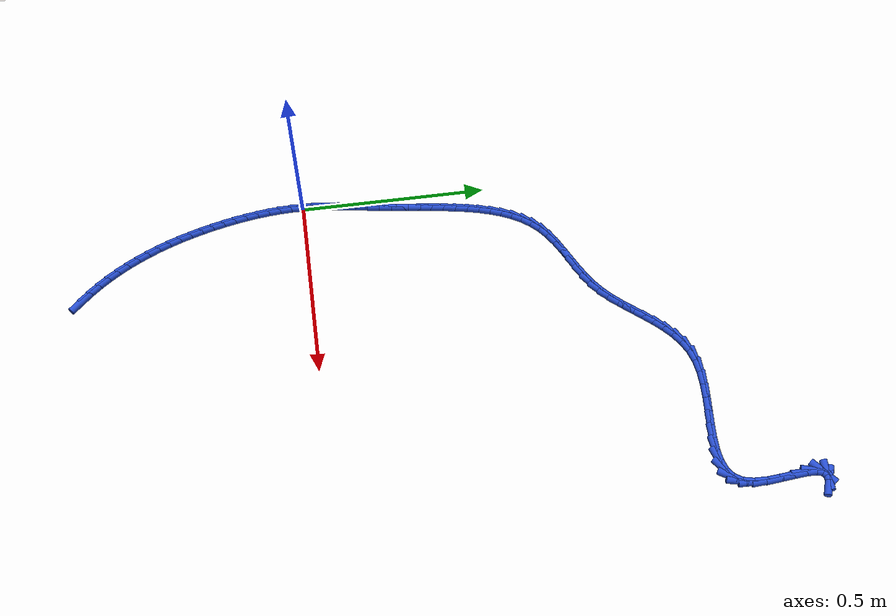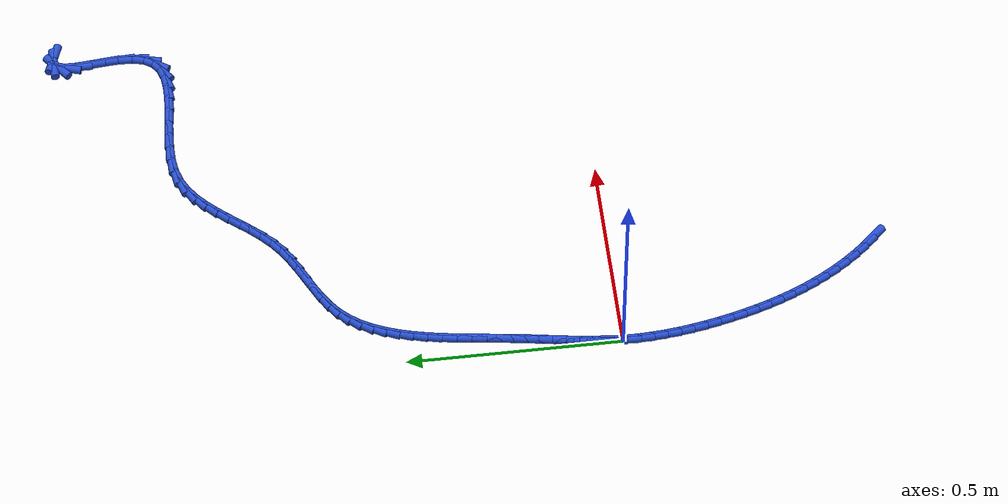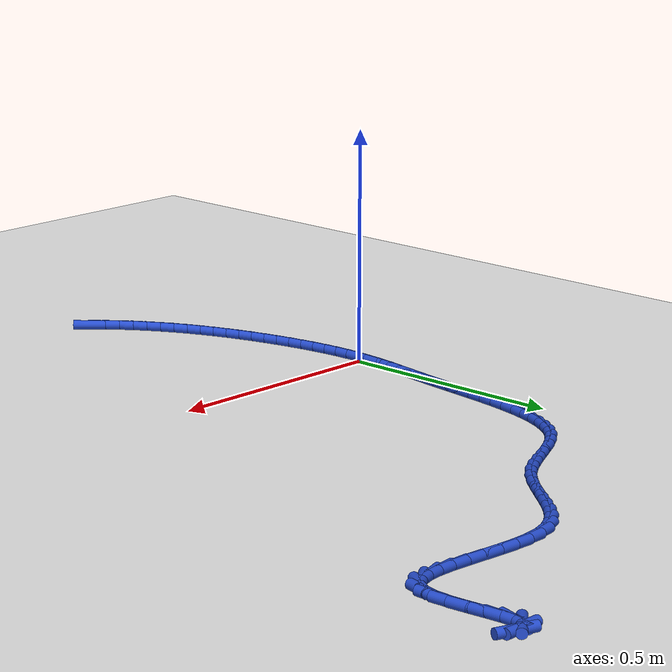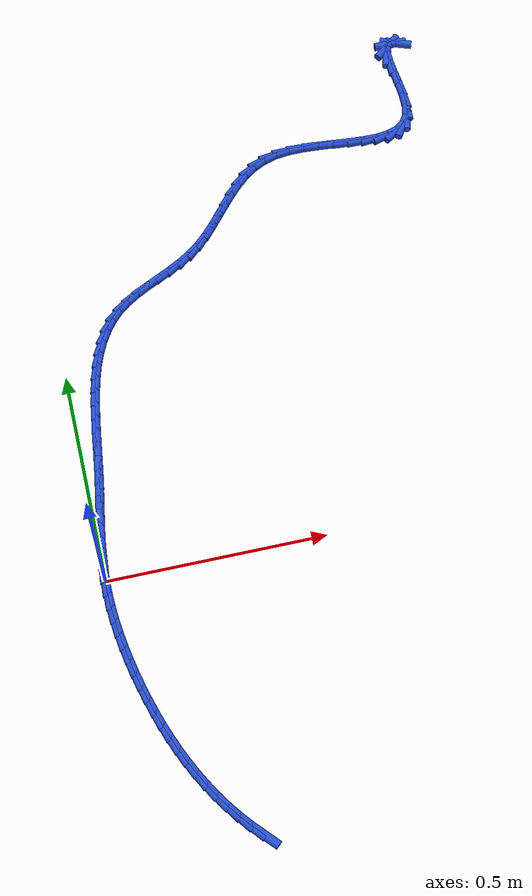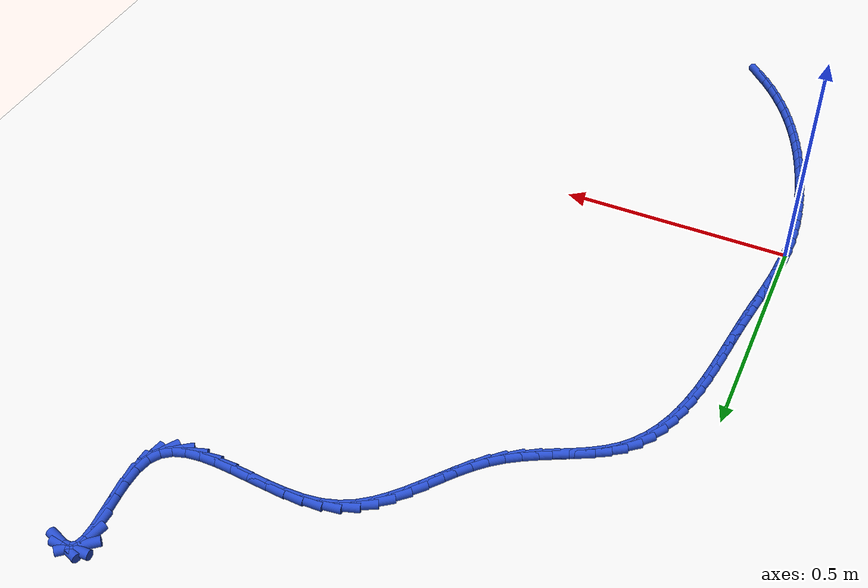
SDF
<sdf version="1.6">
 <world name="default">
  <model name="ground_plane">
   <static>1</static>
   <link name="link">
    <collision name="collision">
     <geometry><plane><normal>0 0 1</normal><size>100 100</size></plane></geometry>
     <surface><friction><ode><mu>100</mu><mu2>50</mu2></ode></friction></surface>
    </collision>
    <visual name="visual">
     <cast_shadows>0</cast_shadows>
     <geometry><plane><normal>0 0 1</normal><size>100 100</size></plane></geometry>
     <material>
      <script><uri>file://media/materials/scripts/gazebo.material</uri><name>Gazebo/WhiteGlow</name></script>
     </material>
    </visual>
   </link>
  </model>
  <model name="line">
   <link name="link_0">
    <pose>-8.673617379884035e-19 2.7755575615628914e-17 0.01 0 1.57 1.5227078430501169</pose>
    <collision name="collision">
     <geometry><cylinder><radius>0.01</radius><length>0.08</length></cylinder></geometry>
    </collision>
    <visual name="visual">
     <material>
      <script><name>Gazebo/Blue</name><uri>file://media/materials/scripts/gazebo.material</uri></script>
     </material>
     <geometry><cylinder><radius>0.01</radius><length>0.08</length></cylinder></geometry>
    </visual>
   </link>
   <link name="link_1">
    <pose>0.0014766979700488309 0.030684259317045944 0.01 0 1.57 1.484574046072524</pose>
    <collision name="collision">
     <geometry><cylinder><radius>0.01</radius><length>0.08</length></cylinder></geometry>
    </collision>
    <visual name="visual">
     <material>
      <script><name>Gazebo/Blue</name><uri>file://media/materials/scripts/gazebo.material</uri></script>
     </material>
     <geometry><cylinder><radius>0.01</radius><length>0.08</length></cylinder></geometry>
    </visual>
   </link>
   <link name="link_2">
    <pose>0.004117510956563853 0.06123628758839806 0.01 0 1.57 1.4543443842008996</pose>
    <collision name="collision">
     <geometry><cylinder><radius>0.01</radius><length>0.08</length></cylinder></geometry>
    </collision>
    <visual name="visual">
     <material>
      <script><name>Gazebo/Blue</name><uri>file://media/materials/scripts/gazebo.material</uri></script>
     </material>
     <geometry><cylinder><radius>0.01</radius><length>0.08</length></cylinder></geometry>
    </visual>
   </link>
   <link name="link_3">
    <pose>0.007690861254964938 0.09178264685997742 0.01 0 1.57 1.4323114525035265</pose>
    <collision name="collision">
     <geometry><cylinder><radius>0.01</radius><length>0.08</length></cylinder></geometry>
    </collision>
    <visual name="visual">
     <material>
      <script><name>Gazebo/Blue</name><uri>file://media/materials/scripts/gazebo.material</uri></script>
     </material>
     <geometry><cylinder><radius>0.01</radius><length>0.08</length></cylinder></geometry>
    </visual>
   </link>
   <link name="link_4">
    <pose>0.011965171160671998 0.12244989917770505 0.01 0 1.57 1.418539389519517</pose>
    <collision name="collision">
     <geometry><cylinder><radius>0.01</radius><length>0.08</length></cylinder></geometry>
    </collision>
    <visual name="visual">
     <material>
      <script><name>Gazebo/Blue</name><uri>file://media/materials/scripts/gazebo.material</uri></script>
     </material>
     <geometry><cylinder><radius>0.01</radius><length>0.08</length></cylinder></geometry>
    </visual>
   </link>
   <link name="link_5">
    <pose>0.016708862969104895 0.1533646065875019 0.01 0 1.57 1.4129108738066924</pose>
    <collision name="collision">
     <geometry><cylinder><radius>0.01</radius><length>0.08</length></cylinder></geometry>
    </collision>
    <visual name="visual">
     <material>
      <script><name>Gazebo/Blue</name><uri>file://media/materials/scripts/gazebo.material</uri></script>
     </material>
     <geometry><cylinder><radius>0.01</radius><length>0.08</length></cylinder></geometry>
    </visual>
   </link>
   <link name="link_6">
    <pose>0.021690358975683527 0.1846533311352891 0.01 0 1.57 1.4151657299652882</pose>
    <collision name="collision">
     <geometry><cylinder><radius>0.01</radius><length>0.08</length></cylinder></geometry>
    </collision>
    <visual name="visual">
     <material>
      <script><name>Gazebo/Blue</name><uri>file://media/materials/scripts/gazebo.material</uri></script>
     </material>
     <geometry><cylinder><radius>0.01</radius><length>0.08</length></cylinder></geometry>
    </visual>
   </link>
   <link name="link_7">
    <pose>0.026678081475827765 0.21644263486698756 0.01 0 1.57 1.424927590133822</pose>
    <collision name="collision">
     <geometry><cylinder><radius>0.01</radius><length>0.08</length></cylinder></geometry>
    </collision>
    <visual name="visual">
     <material>
      <script><name>Gazebo/Blue</name><uri>file://media/materials/scripts/gazebo.material</uri></script>
     </material>
     <geometry><cylinder><radius>0.01</radius><length>0.08</length></cylinder></geometry>
    </visual>
   </link>
   <link name="link_8">
    <pose>0.0314404527764978 0.24885907981941502 0.01 0 1.57 1.4389313910487087</pose>
    <collision name="collision">
     <geometry><cylinder><radius>0.01</radius><length>0.08</length></cylinder></geometry>
    </collision>
    <visual name="visual">
     <material>
      <script><name>Gazebo/Blue</name><uri>file://media/materials/scripts/gazebo.material</uri></script>
     </material>
     <geometry><cylinder><radius>0.01</radius><length>0.08</length></cylinder></geometry>
    </visual>
   </link>
   <link name="link_9">
    <pose>0.03583105232287879 0.2819620539237671 0.01 0 1.57 1.4461551996176942</pose>
    <collision name="collision">
     <geometry><cylinder><radius>0.01</radius><length>0.08</length></cylinder></geometry>
    </collision>
    <visual name="visual">
     <material>
      <script><name>Gazebo/Blue</name><uri>file://media/materials/scripts/gazebo.material</uri></script>
     </material>
     <geometry><cylinder><radius>0.01</radius><length>0.08</length></cylinder></geometry>
    </visual>
   </link>
   <link name="link_10">
    <pose>0.04003885294282734 0.31554637832350824 0.01 0 1.57 1.4443409081162084</pose>
    <collision name="collision">
     <geometry><cylinder><radius>0.01</radius><length>0.08</length></cylinder></geometry>
    </collision>
    <visual name="visual">
     <material>
      <script><name>Gazebo/Blue</name><uri>file://media/materials/scripts/gazebo.material</uri></script>
     </material>
     <geometry><cylinder><radius>0.01</radius><length>0.08</length></cylinder></geometry>
    </visual>
   </link>
   <link name="link_11">
    <pose>0.04433538707058213 0.3493417490553315 0.01 0 1.57 1.4336270910488593</pose>
    <collision name="collision">
     <geometry><cylinder><radius>0.01</radius><length>0.08</length></cylinder></geometry>
    </collision>
    <visual name="visual">
     <material>
      <script><name>Gazebo/Blue</name><uri>file://media/materials/scripts/gazebo.material</uri></script>
     </material>
     <geometry><cylinder><radius>0.01</radius><length>0.08</length></cylinder></geometry>
    </visual>
   </link>
   <link name="link_12">
    <pose>0.04899218714038191 0.3830778621559303 0.01 0 1.57 1.4137891010803572</pose>
    <collision name="collision">
     <geometry><cylinder><radius>0.01</radius><length>0.08</length></cylinder></geometry>
    </collision>
    <visual name="visual">
     <material>
      <script><name>Gazebo/Blue</name><uri>file://media/materials/scripts/gazebo.material</uri></script>
     </material>
     <geometry><cylinder><radius>0.01</radius><length>0.08</length></cylinder></geometry>
    </visual>
   </link>
   <link name="link_13">
    <pose>0.05428078558646535 0.41648441366199773 0.01 0 1.57 1.3842508964110392</pose>
    <collision name="collision">
     <geometry><cylinder><radius>0.01</radius><length>0.08</length></cylinder></geometry>
    </collision>
    <visual name="visual">
     <material>
      <script><name>Gazebo/Blue</name><uri>file://media/materials/scripts/gazebo.material</uri></script>
     </material>
     <geometry><cylinder><radius>0.01</radius><length>0.08</length></cylinder></geometry>
    </visual>
   </link>
   <link name="link_14">
    <pose>0.06047271484307115 0.4492910996102269 0.01 0 1.57 1.3440918055485607</pose>
    <collision name="collision">
     <geometry><cylinder><radius>0.01</radius><length>0.08</length></cylinder></geometry>
    </collision>
    <visual name="visual">
     <material>
      <script><name>Gazebo/Blue</name><uri>file://media/materials/scripts/gazebo.material</uri></script>
     </material>
     <geometry><cylinder><radius>0.01</radius><length>0.08</length></cylinder></geometry>
    </visual>
   </link>
   <link name="link_15">
    <pose>0.06783950734443803 0.48122761603731096 0.01 0 1.57 1.292066856727231</pose>
    <collision name="collision">
     <geometry><cylinder><radius>0.01</radius><length>0.08</length></cylinder></geometry>
    </collision>
    <visual name="visual">
     <material>
      <script><name>Gazebo/Blue</name><uri>file://media/materials/scripts/gazebo.material</uri></script>
     </material>
     <geometry><cylinder><radius>0.01</radius><length>0.08</length></cylinder></geometry>
    </visual>
   </link>
   <link name="link_16">
    <pose>0.07665269552480472 0.5120236589799433 0.01 0 1.57 1.2266748727406762</pose>
    <collision name="collision">
     <geometry><cylinder><radius>0.01</radius><length>0.08</length></cylinder></geometry>
    </collision>
    <visual name="visual">
     <material>
      <script><name>Gazebo/Blue</name><uri>file://media/materials/scripts/gazebo.material</uri></script>
     </material>
     <geometry><cylinder><radius>0.01</radius><length>0.08</length></cylinder></geometry>
    </visual>
   </link>
   <link name="link_17">
    <pose>0.0871838118184099 0.5414089244748169 0.01 0 1.57 1.1463318288702347</pose>
    <collision name="collision">
     <geometry><cylinder><radius>0.01</radius><length>0.08</length></cylinder></geometry>
    </collision>
    <visual name="visual">
     <material>
      <script><name>Gazebo/Blue</name><uri>file://media/materials/scripts/gazebo.material</uri></script>
     </material>
     <geometry><cylinder><radius>0.01</radius><length>0.08</length></cylinder></geometry>
    </visual>
   </link>
   <link name="link_18">
    <pose>0.09970438865949227 0.569113108558625 0.01 0 1.57 1.049729572246691</pose>
    <collision name="collision">
     <geometry><cylinder><radius>0.01</radius><length>0.08</length></cylinder></geometry>
    </collision>
    <visual name="visual">
     <material>
      <script><name>Gazebo/Blue</name><uri>file://media/materials/scripts/gazebo.material</uri></script>
     </material>
     <geometry><cylinder><radius>0.01</radius><length>0.08</length></cylinder></geometry>
    </visual>
   </link>
   <link name="link_19">
    <pose>0.11448595848229048 0.5948659072680608 0.01 0 1.57 0.9364479517494522</pose>
    <collision name="collision">
     <geometry><cylinder><radius>0.01</radius><length>0.08</length></cylinder></geometry>
    </collision>
    <visual name="visual">
     <material>
      <script><name>Gazebo/Blue</name><uri>file://media/materials/scripts/gazebo.material</uri></script>
     </material>
     <geometry><cylinder><radius>0.01</radius><length>0.08</length></cylinder></geometry>
    </visual>
   </link>
   <link name="link_20">
    <pose>0.1318000537210434 0.6183970166398175 0.01 0 1.57 0.8077711082801686</pose>
    <collision name="collision">
     <geometry><cylinder><radius>0.01</radius><length>0.08</length></cylinder></geometry>
    </collision>
    <visual name="visual">
     <material>
      <script><name>Gazebo/Blue</name><uri>file://media/materials/scripts/gazebo.material</uri></script>
     </material>
     <geometry><cylinder><radius>0.01</radius><length>0.08</length></cylinder></geometry>
    </visual>
   </link>
   <link name="link_21">
    <pose>0.15191820680998963 0.6394361327105883 0.01 0 1.57 0.6718495499952478</pose>
    <collision name="collision">
     <geometry><cylinder><radius>0.01</radius><length>0.08</length></cylinder></geometry>
    </collision>
    <visual name="visual">
     <material>
      <script><name>Gazebo/Blue</name><uri>file://media/materials/scripts/gazebo.material</uri></script>
     </material>
     <geometry><cylinder><radius>0.01</radius><length>0.08</length></cylinder></geometry>
    </visual>
   </link>
   <link name="link_22">
    <pose>0.1750202774864406 0.6578084944364359 0.01 0 1.57 0.5637679732753983</pose>
    <collision name="collision">
     <geometry><cylinder><radius>0.01</radius><length>0.08</length></cylinder></geometry>
    </collision>
    <visual name="visual">
     <material>
      <script><name>Gazebo/Blue</name><uri>file://media/materials/scripts/gazebo.material</uri></script>
     </material>
     <geometry><cylinder><radius>0.01</radius><length>0.08</length></cylinder></geometry>
    </visual>
   </link>
   <link name="link_23">
    <pose>0.2006442873387206 0.6740082759370251 0.01 0 1.57 0.4953028696086822</pose>
    <collision name="collision">
     <geometry><cylinder><radius>0.01</radius><length>0.08</length></cylinder></geometry>
    </collision>
    <visual name="visual">
     <material>
      <script><name>Gazebo/Blue</name><uri>file://media/materials/scripts/gazebo.material</uri></script>
     </material>
     <geometry><cylinder><radius>0.01</radius><length>0.08</length></cylinder></geometry>
    </visual>
   </link>
   <link name="link_24">
    <pose>0.22805397603519736 0.6888155128397677 0.01 0 1.57 0.4627128845364818</pose>
    <collision name="collision">
     <geometry><cylinder><radius>0.01</radius><length>0.08</length></cylinder></geometry>
    </collision>
    <visual name="visual">
     <material>
      <script><name>Gazebo/Blue</name><uri>file://media/materials/scripts/gazebo.material</uri></script>
     </material>
     <geometry><cylinder><radius>0.01</radius><length>0.08</length></cylinder></geometry>
    </visual>
   </link>
   <link name="link_25">
    <pose>0.25651205185897796 0.7030113157001865 0.01 0 1.57 0.46311617016512074</pose>
    <collision name="collision">
     <geometry><cylinder><radius>0.01</radius><length>0.08</length></cylinder></geometry>
    </collision>
    <visual name="visual">
     <material>
      <script><name>Gazebo/Blue</name><uri>file://media/materials/scripts/gazebo.material</uri></script>
     </material>
     <geometry><cylinder><radius>0.01</radius><length>0.08</length></cylinder></geometry>
    </visual>
   </link>
   <link name="link_26">
    <pose>0.2852812230931695 0.717376795073803 0.01 0 1.57 0.4954353351867064</pose>
    <collision name="collision">
     <geometry><cylinder><radius>0.01</radius><length>0.08</length></cylinder></geometry>
    </collision>
    <visual name="visual">
     <material>
      <script><name>Gazebo/Blue</name><uri>file://media/materials/scripts/gazebo.material</uri></script>
     </material>
     <geometry><cylinder><radius>0.01</radius><length>0.08</length></cylinder></geometry>
    </visual>
   </link>
   <link name="link_27">
    <pose>0.3136241980208788 0.7326930615161387 0.01 0 1.57 0.5602111921854945</pose>
    <collision name="collision">
     <geometry><cylinder><radius>0.01</radius><length>0.08</length></cylinder></geometry>
    </collision>
    <visual name="visual">
     <material>
      <script><name>Gazebo/Blue</name><uri>file://media/materials/scripts/gazebo.material</uri></script>
     </material>
     <geometry><cylinder><radius>0.01</radius><length>0.08</length></cylinder></geometry>
    </visual>
   </link>
   <link name="link_28">
    <pose>0.3408036849252134 0.7497412255827155 0.01 0 1.57 0.657716649335117</pose>
    <collision name="collision">
     <geometry><cylinder><radius>0.01</radius><length>0.08</length></cylinder></geometry>
    </collision>
    <visual name="visual">
     <material>
      <script><name>Gazebo/Blue</name><uri>file://media/materials/scripts/gazebo.material</uri></script>
     </material>
     <geometry><cylinder><radius>0.01</radius><length>0.08</length></cylinder></geometry>
    </visual>
   </link>
   <link name="link_29">
    <pose>0.36609989519673886 0.7692813509312098 0.01 0 1.57 0.7597730746519437</pose>
    <collision name="collision">
     <geometry><cylinder><radius>0.01</radius><length>0.08</length></cylinder></geometry>
    </collision>
    <visual name="visual">
     <material>
      <script><name>Gazebo/Blue</name><uri>file://media/materials/scripts/gazebo.material</uri></script>
     </material>
     <geometry><cylinder><radius>0.01</radius><length>0.08</length></cylinder></geometry>
    </visual>
   </link>
   <link name="link_30">
    <pose>0.38936596705056237 0.7913845759883146 0.01 0 1.57 0.8320810749532079</pose>
    <collision name="collision">
     <geometry><cylinder><radius>0.01</radius><length>0.08</length></cylinder></geometry>
    </collision>
    <visual name="visual">
     <material>
      <script><name>Gazebo/Blue</name><uri>file://media/materials/scripts/gazebo.material</uri></script>
     </material>
     <geometry><cylinder><radius>0.01</radius><length>0.08</length></cylinder></geometry>
    </visual>
   </link>
   <link name="link_31">
    <pose>0.4111424599092808 0.815295438306289 0.01 0 1.57 0.8735451435835182</pose>
    <collision name="collision">
     <geometry><cylinder><radius>0.01</radius><length>0.08</length></cylinder></geometry>
    </collision>
    <visual name="visual">
     <material>
      <script><name>Gazebo/Blue</name><uri>file://media/materials/scripts/gazebo.material</uri></script>
     </material>
     <geometry><cylinder><radius>0.01</radius><length>0.08</length></cylinder></geometry>
    </visual>
   </link>
   <link name="link_32">
    <pose>0.43201057371116647 0.8402096065845998 0.01 0 1.57 0.8852142958517611</pose>
    <collision name="collision">
     <geometry><cylinder><radius>0.01</radius><length>0.08</length></cylinder></geometry>
    </collision>
    <visual name="visual">
     <material>
      <script><name>Gazebo/Blue</name><uri>file://media/materials/scripts/gazebo.material</uri></script>
     </material>
     <geometry><cylinder><radius>0.01</radius><length>0.08</length></cylinder></geometry>
    </visual>
   </link>
   <link name="link_33">
    <pose>0.4525515083944917 0.865322749522714 0.01 0 1.57 0.8671713900985939</pose>
    <collision name="collision">
     <geometry><cylinder><radius>0.01</radius><length>0.08</length></cylinder></geometry>
    </collision>
    <visual name="visual">
     <material>
      <script><name>Gazebo/Blue</name><uri>file://media/materials/scripts/gazebo.material</uri></script>
     </material>
     <geometry><cylinder><radius>0.01</radius><length>0.08</length></cylinder></geometry>
    </visual>
   </link>
   <link name="link_34">
    <pose>0.473346463897529 0.8898305358200981 0.01 0 1.57 0.8182050496985457</pose>
    <collision name="collision">
     <geometry><cylinder><radius>0.01</radius><length>0.08</length></cylinder></geometry>
    </collision>
    <visual name="visual">
     <material>
      <script><name>Gazebo/Blue</name><uri>file://media/materials/scripts/gazebo.material</uri></script>
     </material>
     <geometry><cylinder><radius>0.01</radius><length>0.08</length></cylinder></geometry>
    </visual>
   </link>
   <link name="link_35">
    <pose>0.4949766401585505 0.9129286341762192 0.01 0 1.57 0.7362121763774888</pose>
    <collision name="collision">
     <geometry><cylinder><radius>0.01</radius><length>0.08</length></cylinder></geometry>
    </collision>
    <visual name="visual">
     <material>
      <script><name>Gazebo/Blue</name><uri>file://media/materials/scripts/gazebo.material</uri></script>
     </material>
     <geometry><cylinder><radius>0.01</radius><length>0.08</length></cylinder></geometry>
    </visual>
   </link>
   <link name="link_36">
    <pose>0.5180232371158289 0.9338127132905439 0.01 0 1.57 0.6196411537167645</pose>
    <collision name="collision">
     <geometry><cylinder><radius>0.01</radius><length>0.08</length></cylinder></geometry>
    </collision>
    <visual name="visual">
     <material>
      <script><name>Gazebo/Blue</name><uri>file://media/materials/scripts/gazebo.material</uri></script>
     </material>
     <geometry><cylinder><radius>0.01</radius><length>0.08</length></cylinder></geometry>
    </visual>
   </link>
   <link name="link_37">
    <pose>0.5430674547076363 0.9516784418625395 0.01 0 1.57 0.47033045299978116</pose>
    <collision name="collision">
     <geometry><cylinder><radius>0.01</radius><length>0.08</length></cylinder></geometry>
    </collision>
    <visual name="visual">
     <material>
      <script><name>Gazebo/Blue</name><uri>file://media/materials/scripts/gazebo.material</uri></script>
     </material>
     <geometry><cylinder><radius>0.01</radius><length>0.08</length></cylinder></geometry>
    </visual>
   </link>
   <link name="link_38">
    <pose>0.5706904928722454 0.9657214885916727 0.01 0 1.57 0.29703490595790244</pose>
    <collision name="collision">
     <geometry><cylinder><radius>0.01</radius><length>0.08</length></cylinder></geometry>
    </collision>
    <visual name="visual">
     <material>
      <script><name>Gazebo/Blue</name><uri>file://media/materials/scripts/gazebo.material</uri></script>
     </material>
     <geometry><cylinder><radius>0.01</radius><length>0.08</length></cylinder></geometry>
    </visual>
   </link>
   <link name="link_39">
    <pose>0.601469520867363 0.975142653476272 0.01 0 1.57 0.13520720424564975</pose>
    <collision name="collision">
     <geometry><cylinder><radius>0.01</radius><length>0.08</length></cylinder></geometry>
    </collision>
    <visual name="visual">
     <material>
      <script><name>Gazebo/Blue</name><uri>file://media/materials/scripts/gazebo.material</uri></script>
     </material>
     <geometry><cylinder><radius>0.01</radius><length>0.08</length></cylinder></geometry>
    </visual>
   </link>
   <link name="link_40">
    <pose>0.6354885854531444 0.9797705111223965 0.01 0 1.57 0.02434971431885352</pose>
    <collision name="collision">
     <geometry><cylinder><radius>0.01</radius><length>0.08</length></cylinder></geometry>
    </collision>
    <visual name="visual">
     <material>
      <script><name>Gazebo/Blue</name><uri>file://media/materials/scripts/gazebo.material</uri></script>
     </material>
     <geometry><cylinder><radius>0.01</radius><length>0.08</length></cylinder></geometry>
    </visual>
   </link>
   <link name="link_41">
    <pose>0.6718710924087676 0.9806565899011311 0.01 0 1.57 -0.04401826574720289</pose>
    <collision name="collision">
     <geometry><cylinder><radius>0.01</radius><length>0.08</length></cylinder></geometry>
    </collision>
    <visual name="visual">
     <material>
      <script><name>Gazebo/Blue</name><uri>file://media/materials/scripts/gazebo.material</uri></script>
     </material>
     <geometry><cylinder><radius>0.01</radius><length>0.08</length></cylinder></geometry>
    </visual>
   </link>
   <link name="link_42">
    <pose>0.7096296668553287 0.9789934486263355 0.01 0 1.57 -0.07899696149360466</pose>
    <collision name="collision">
     <geometry><cylinder><radius>0.01</radius><length>0.08</length></cylinder></geometry>
    </collision>
    <visual name="visual">
     <material>
      <script><name>Gazebo/Blue</name><uri>file://media/materials/scripts/gazebo.material</uri></script>
     </material>
     <geometry><cylinder><radius>0.01</radius><length>0.08</length></cylinder></geometry>
    </visual>
   </link>
   <link name="link_43">
    <pose>0.7477769339139229 0.9759736461118699 0.01 0 1.57 -0.08459191944908716</pose>
    <collision name="collision">
     <geometry><cylinder><radius>0.01</radius><length>0.08</length></cylinder></geometry>
    </collision>
    <visual name="visual">
     <material>
      <script><name>Gazebo/Blue</name><uri>file://media/materials/scripts/gazebo.material</uri></script>
     </material>
     <geometry><cylinder><radius>0.01</radius><length>0.08</length></cylinder></geometry>
    </visual>
   </link>
   <link name="link_44">
    <pose>0.7853255187056453 0.9727897411715933 0.01 0 1.57 -0.05986434275814405</pose>
    <collision name="collision">
     <geometry><cylinder><radius>0.01</radius><length>0.08</length></cylinder></geometry>
    </collision>
    <visual name="visual">
     <material>
      <script><name>Gazebo/Blue</name><uri>file://media/materials/scripts/gazebo.material</uri></script>
     </material>
     <geometry><cylinder><radius>0.01</radius><length>0.08</length></cylinder></geometry>
    </visual>
   </link>
   <link name="link_45">
    <pose>0.8212880463515925 0.9706342926193664 0.01 0 1.57 0.0019637119299977797</pose>
    <collision name="collision">
     <geometry><cylinder><radius>0.01</radius><length>0.08</length></cylinder></geometry>
    </collision>
    <visual name="visual">
     <material>
      <script><name>Gazebo/Blue</name><uri>file://media/materials/scripts/gazebo.material</uri></script>
     </material>
     <geometry><cylinder><radius>0.01</radius><length>0.08</length></cylinder></geometry>
    </visual>
   </link>
   <link name="link_46">
    <pose>0.8546771419728592 0.9706998592690483 0.01 0 1.57 0.11611429518518097</pose>
    <collision name="collision">
     <geometry><cylinder><radius>0.01</radius><length>0.08</length></cylinder></geometry>
    </collision>
    <visual name="visual">
     <material>
      <script><name>Gazebo/Blue</name><uri>file://media/materials/scripts/gazebo.material</uri></script>
     </material>
     <geometry><cylinder><radius>0.01</radius><length>0.08</length></cylinder></geometry>
    </visual>
   </link>
   <link name="link_47">
    <pose>0.8845054306905412 0.9741789999344992 0.01 0 1.57 0.30954646331296826</pose>
    <collision name="collision">
     <geometry><cylinder><radius>0.01</radius><length>0.08</length></cylinder></geometry>
    </collision>
    <visual name="visual">
     <material>
      <script><name>Gazebo/Blue</name><uri>file://media/materials/scripts/gazebo.material</uri></script>
     </material>
     <geometry><cylinder><radius>0.01</radius><length>0.08</length></cylinder></geometry>
    </visual>
   </link>
   <link name="link_48">
    <pose>0.909785537625734 0.9822642734295786 0.01 0 1.57 0.6128567439275524</pose>
    <collision name="collision">
     <geometry><cylinder><radius>0.01</radius><length>0.08</length></cylinder></geometry>
    </collision>
    <visual name="visual">
     <material>
      <script><name>Gazebo/Blue</name><uri>file://media/materials/scripts/gazebo.material</uri></script>
     </material>
     <geometry><cylinder><radius>0.01</radius><length>0.08</length></cylinder></geometry>
    </visual>
   </link>
   <link name="link_49">
    <pose>0.9295300878995331 0.9961482385681466 0.01 0 1.57 1.0062030785484826</pose>
    <collision name="collision">
     <geometry><cylinder><radius>0.01</radius><length>0.08</length></cylinder></geometry>
    </collision>
    <visual name="visual">
     <material>
      <script><name>Gazebo/Blue</name><uri>file://media/materials/scripts/gazebo.material</uri></script>
     </material>
     <geometry><cylinder><radius>0.01</radius><length>0.08</length></cylinder></geometry>
    </visual>
   </link>
   <link name="link_50">
    <pose>0.9427517330875418 1.017023418780935 0.01 0 1.57 1.3525167556564872</pose>
    <collision name="collision">
     <geometry><cylinder><radius>0.01</radius><length>0.08</length></cylinder></geometry>
    </collision>
    <visual name="visual">
     <material>
      <script><name>Gazebo/Blue</name><uri>file://media/materials/scripts/gazebo.material</uri></script>
     </material>
     <geometry><cylinder><radius>0.01</radius><length>0.08</length></cylinder></geometry>
    </visual>
   </link>
   <link name="link_51">
    <pose>0.9490293975666655 1.0453249428465847 0.01 0 1.57 1.542768420031275</pose>
    <collision name="collision">
     <geometry><cylinder><radius>0.01</radius><length>0.08</length></cylinder></geometry>
    </collision>
    <visual name="visual">
     <material>
      <script><name>Gazebo/Blue</name><uri>file://media/materials/scripts/gazebo.material</uri></script>
     </material>
     <geometry><cylinder><radius>0.01</radius><length>0.08</length></cylinder></geometry>
    </visual>
   </link>
   <link name="link_52">
    <pose>0.9499672931821174 1.0787791004578342 0.01 0 1.57 -1.5052532845175577</pose>
    <collision name="collision">
     <geometry><cylinder><radius>0.01</radius><length>0.08</length></cylinder></geometry>
    </collision>
    <visual name="visual">
     <material>
      <script><name>Gazebo/Blue</name><uri>file://media/materials/scripts/gazebo.material</uri></script>
     </material>
     <geometry><cylinder><radius>0.01</radius><length>0.08</length></cylinder></geometry>
    </visual>
   </link>
   <link name="link_53">
    <pose>0.9476222302854045 1.1145068269845204 0.01 0 1.57 -1.4694650756756558</pose>
    <collision name="collision">
     <geometry><cylinder><radius>0.01</radius><length>0.08</length></cylinder></geometry>
    </collision>
    <visual name="visual">
     <material>
      <script><name>Gazebo/Blue</name><uri>file://media/materials/scripts/gazebo.material</uri></script>
     </material>
     <geometry><cylinder><radius>0.01</radius><length>0.08</length></cylinder></geometry>
    </visual>
   </link>
   <link name="link_54">
    <pose>0.9440510192280328 1.1496290577964803 0.01 0 1.57 -1.4843890497253098</pose>
    <collision name="collision">
     <geometry><cylinder><radius>0.01</radius><length>0.08</length></cylinder></geometry>
    </collision>
    <visual name="visual">
     <material>
      <script><name>Gazebo/Blue</name><uri>file://media/materials/scripts/gazebo.material</uri></script>
     </material>
     <geometry><cylinder><radius>0.01</radius><length>0.08</length></cylinder></geometry>
    </visual>
   </link>
   <link name="link_55">
    <pose>0.9413104703615077 1.1812667282635492 0.01 0 1.57 1.5649831687516584</pose>
    <collision name="collision">
     <geometry><cylinder><radius>0.01</radius><length>0.08</length></cylinder></geometry>
    </collision>
    <visual name="visual">
     <material>
      <script><name>Gazebo/Blue</name><uri>file://media/materials/scripts/gazebo.material</uri></script>
     </material>
     <geometry><cylinder><radius>0.01</radius><length>0.08</length></cylinder></geometry>
    </visual>
   </link>
   <link name="link_56">
    <pose>0.9414573940373363 1.206540773755564 0.01 0 1.57 1.2874305760909794</pose>
    <collision name="collision">
     <geometry><cylinder><radius>0.01</radius><length>0.08</length></cylinder></geometry>
    </collision>
    <visual name="visual">
     <material>
      <script><name>Gazebo/Blue</name><uri>file://media/materials/scripts/gazebo.material</uri></script>
     </material>
     <geometry><cylinder><radius>0.01</radius><length>0.08</length></cylinder></geometry>
    </visual>
   </link>
   <link name="link_57">
    <pose>0.9462603256378946 1.223034248461938 0.01 0 1.57 0.6835445726071061</pose>
    <collision name="collision">
     <geometry><cylinder><radius>0.01</radius><length>0.08</length></cylinder></geometry>
    </collision>
    <visual name="visual">
     <material>
      <script><name>Gazebo/Blue</name><uri>file://media/materials/scripts/gazebo.material</uri></script>
     </material>
     <geometry><cylinder><radius>0.01</radius><length>0.08</length></cylinder></geometry>
    </visual>
   </link>
   <link name="link_58">
    <pose>0.9558956039949503 1.2308825752106973 0.01 0 1.57 0.015247276026641877</pose>
    <collision name="collision">
     <geometry><cylinder><radius>0.01</radius><length>0.08</length></cylinder></geometry>
    </collision>
    <visual name="visual">
     <material>
      <script><name>Gazebo/Blue</name><uri>file://media/materials/scripts/gazebo.material</uri></script>
     </material>
     <geometry><cylinder><radius>0.01</radius><length>0.08</length></cylinder></geometry>
    </visual>
   </link>
   <link name="link_59">
    <pose>0.9699928845133576 1.2310975369963089 0.01 0 1.57 -0.3386264770691686</pose>
    <collision name="collision">
     <geometry><cylinder><radius>0.01</radius><length>0.08</length></cylinder></geometry>
    </collision>
    <visual name="visual">
     <material>
      <script><name>Gazebo/Blue</name><uri>file://media/materials/scripts/gazebo.material</uri></script>
     </material>
     <geometry><cylinder><radius>0.01</radius><length>0.08</length></cylinder></geometry>
    </visual>
   </link>
   <link name="link_229">
    <pose>0.2190681799912483 -0.6076839806298531 0.01 0 1.57 -0.8187646844586312</pose>
    <collision name="collision">
     <geometry><cylinder><radius>0.01</radius><length>0.08</length></cylinder></geometry>
    </collision>
    <visual name="visual">
     <material>
      <script><name>Gazebo/Blue</name><uri>file://media/materials/scripts/gazebo.material</uri></script>
     </material>
     <geometry><cylinder><radius>0.01</radius><length>0.08</length></cylinder></geometry>
    </visual>
   </link>
   <link name="link_230">
    <pose>0.1974250914127414 -0.5845461539483786 0.01 0 1.57 -0.8736783278240421</pose>
    <collision name="collision">
     <geometry><cylinder><radius>0.01</radius><length>0.08</length></cylinder></geometry>
    </collision>
    <visual name="visual">
     <material>
      <script><name>Gazebo/Blue</name><uri>file://media/materials/scripts/gazebo.material</uri></script>
     </material>
     <geometry><cylinder><radius>0.01</radius><length>0.08</length></cylinder></geometry>
    </visual>
   </link>
   <link name="link_231">
    <pose>0.17710505603578877 -0.5602797645046134 0.01 0 1.57 -0.9254541944164598</pose>
    <collision name="collision">
     <geometry><cylinder><radius>0.01</radius><length>0.08</length></cylinder></geometry>
    </collision>
    <visual name="visual">
     <material>
      <script><name>Gazebo/Blue</name><uri>file://media/materials/scripts/gazebo.material</uri></script>
     </material>
     <geometry><cylinder><radius>0.01</radius><length>0.08</length></cylinder></geometry>
    </visual>
   </link>
   <link name="link_232">
    <pose>0.15808545612656594 -0.5350173252625672 0.01 0 1.57 -0.9742449976067905</pose>
    <collision name="collision">
     <geometry><cylinder><radius>0.01</radius><length>0.08</length></cylinder></geometry>
    </collision>
    <visual name="visual">
     <material>
      <script><name>Gazebo/Blue</name><uri>file://media/materials/scripts/gazebo.material</uri></script>
     </material>
     <geometry><cylinder><radius>0.01</radius><length>0.08</length></cylinder></geometry>
    </visual>
   </link>
   <link name="link_233">
    <pose>0.14034367395124805 -0.5088913491862493 0.01 0 1.57 -1.0202440344256871</pose>
    <collision name="collision">
     <geometry><cylinder><radius>0.01</radius><length>0.08</length></cylinder></geometry>
    </collision>
    <visual name="visual">
     <material>
      <script><name>Gazebo/Blue</name><uri>file://media/materials/scripts/gazebo.material</uri></script>
     </material>
     <geometry><cylinder><radius>0.01</radius><length>0.08</length></cylinder></geometry>
    </visual>
   </link>
   <link name="link_234">
    <pose>0.1238570917760105 -0.4820343492396696 0.01 0 1.57 -1.0637466312646575</pose>
    <collision name="collision">
     <geometry><cylinder><radius>0.01</radius><length>0.08</length></cylinder></geometry>
    </collision>
    <visual name="visual">
     <material>
      <script><name>Gazebo/Blue</name><uri>file://media/materials/scripts/gazebo.material</uri></script>
     </material>
     <geometry><cylinder><radius>0.01</radius><length>0.08</length></cylinder></geometry>
    </visual>
   </link>
   <link name="link_235">
    <pose>0.10859742780226608 -0.45456379582847684 0.01 0 1.57 -1.1051514311229689</pose>
    <collision name="collision">
     <geometry><cylinder><radius>0.01</radius><length>0.08</length></cylinder></geometry>
    </collision>
    <visual name="visual">
     <material>
      <script><name>Gazebo/Blue</name><uri>file://media/materials/scripts/gazebo.material</uri></script>
     </material>
     <geometry><cylinder><radius>0.01</radius><length>0.08</length></cylinder></geometry>
    </visual>
   </link>
   <link name="link_236">
    <pose>0.09451303109859738 -0.4265350958828518 0.01 0 1.57 -1.144438980723093</pose>
    <collision name="collision">
     <geometry><cylinder><radius>0.01</radius><length>0.08</length></cylinder></geometry>
    </collision>
    <visual name="visual">
     <material>
      <script><name>Gazebo/Blue</name><uri>file://media/materials/scripts/gazebo.material</uri></script>
     </material>
     <geometry><cylinder><radius>0.01</radius><length>0.08</length></cylinder></geometry>
    </visual>
   </link>
   <link name="link_237">
    <pose>0.08154622465997005 -0.3979876523556435 0.01 0 1.57 -1.1815247543559446</pose>
    <collision name="collision">
     <geometry><cylinder><radius>0.01</radius><length>0.08</length></cylinder></geometry>
    </collision>
    <visual name="visual">
     <material>
      <script><name>Gazebo/Blue</name><uri>file://media/materials/scripts/gazebo.material</uri></script>
     </material>
     <geometry><cylinder><radius>0.01</radius><length>0.08</length></cylinder></geometry>
    </visual>
   </link>
   <link name="link_238">
    <pose>0.06963933147491624 -0.3689608681826142 0.01 0 1.57 -1.2163576088284156</pose>
    <collision name="collision">
     <geometry><cylinder><radius>0.01</radius><length>0.08</length></cylinder></geometry>
    </collision>
    <visual name="visual">
     <material>
      <script><name>Gazebo/Blue</name><uri>file://media/materials/scripts/gazebo.material</uri></script>
     </material>
     <geometry><cylinder><radius>0.01</radius><length>0.08</length></cylinder></geometry>
    </visual>
   </link>
   <link name="link_239">
    <pose>0.058734674531968095 -0.33949414629952657 0.01 0 1.57 -1.2489148339197351</pose>
    <collision name="collision">
     <geometry><cylinder><radius>0.01</radius><length>0.08</length></cylinder></geometry>
    </collision>
    <visual name="visual">
     <material>
      <script><name>Gazebo/Blue</name><uri>file://media/materials/scripts/gazebo.material</uri></script>
     </material>
     <geometry><cylinder><radius>0.01</radius><length>0.08</length></cylinder></geometry>
    </visual>
   </link>
   <link name="link_240">
    <pose>0.04877457681965805 -0.3096268896421441 0.01 0 1.57 -1.2791969255196747</pose>
    <collision name="collision">
     <geometry><cylinder><radius>0.01</radius><length>0.08</length></cylinder></geometry>
    </collision>
    <visual name="visual">
     <material>
      <script><name>Gazebo/Blue</name><uri>file://media/materials/scripts/gazebo.material</uri></script>
     </material>
     <geometry><cylinder><radius>0.01</radius><length>0.08</length></cylinder></geometry>
    </visual>
   </link>
   <link name="link_241">
    <pose>0.039701361326517685 -0.27939850114622755 0.01 0 1.57 -1.307222441202363</pose>
    <collision name="collision">
     <geometry><cylinder><radius>0.01</radius><length>0.08</length></cylinder></geometry>
    </collision>
    <visual name="visual">
     <material>
      <script><name>Gazebo/Blue</name><uri>file://media/materials/scripts/gazebo.material</uri></script>
     </material>
     <geometry><cylinder><radius>0.01</radius><length>0.08</length></cylinder></geometry>
    </visual>
   </link>
   <link name="link_242">
    <pose>0.031457351041079475 -0.24884838374754056 0.01 0 1.57 -1.3336715535158783</pose>
    <collision name="collision">
     <geometry><cylinder><radius>0.01</radius><length>0.08</length></cylinder></geometry>
    </collision>
    <visual name="visual">
     <material>
      <script><name>Gazebo/Blue</name><uri>file://media/materials/scripts/gazebo.material</uri></script>
     </material>
     <geometry><cylinder><radius>0.01</radius><length>0.08</length></cylinder></geometry>
    </visual>
   </link>
   <link name="link_243">
    <pose>0.024007151097616728 -0.21802057701407032 0.01 0 1.57 -1.3612658359992424</pose>
    <collision name="collision">
     <geometry><cylinder><radius>0.01</radius><length>0.08</length></cylinder></geometry>
    </collision>
    <visual name="visual">
     <material>
      <script><name>Gazebo/Blue</name><uri>file://media/materials/scripts/gazebo.material</uri></script>
     </material>
     <geometry><cylinder><radius>0.01</radius><length>0.08</length></cylinder></geometry>
    </visual>
   </link>
   <link name="link_244">
    <pose>0.017405886493091084 -0.18697795655038643 0.01 0 1.57 -1.3908387754193123</pose>
    <collision name="collision">
     <geometry><cylinder><radius>0.01</radius><length>0.08</length></cylinder></geometry>
    </collision>
    <visual name="visual">
     <material>
      <script><name>Gazebo/Blue</name><uri>file://media/materials/scripts/gazebo.material</uri></script>
     </material>
     <geometry><cylinder><radius>0.01</radius><length>0.08</length></cylinder></geometry>
    </visual>
   </link>
   <link name="link_245">
    <pose>0.011731665422277058 -0.15578818047333762 0.01 0 1.57 -1.422573314990183</pose>
    <collision name="collision">
     <geometry><cylinder><radius>0.01</radius><length>0.08</length></cylinder></geometry>
    </collision>
    <visual name="visual">
     <material>
      <script><name>Gazebo/Blue</name><uri>file://media/materials/scripts/gazebo.material</uri></script>
     </material>
     <geometry><cylinder><radius>0.01</radius><length>0.08</length></cylinder></geometry>
    </visual>
   </link>
   <link name="link_246">
    <pose>0.007062596083063739 -0.12451890690042035 0.01 0 1.57 -1.4566627368855014</pose>
    <collision name="collision">
     <geometry><cylinder><radius>0.01</radius><length>0.08</length></cylinder></geometry>
    </collision>
    <visual name="visual">
     <material>
      <script><name>Gazebo/Blue</name><uri>file://media/materials/scripts/gazebo.material</uri></script>
     </material>
     <geometry><cylinder><radius>0.01</radius><length>0.08</length></cylinder></geometry>
    </visual>
   </link>
   <link name="link_247">
    <pose>0.0034767866733402555 -0.09323779394913133 0.01 0 1.57 -1.4933082849940964</pose>
    <collision name="collision">
     <geometry><cylinder><radius>0.01</radius><length>0.08</length></cylinder></geometry>
    </collision>
    <visual name="visual">
     <material>
      <script><name>Gazebo/Blue</name><uri>file://media/materials/scripts/gazebo.material</uri></script>
     </material>
     <geometry><cylinder><radius>0.01</radius><length>0.08</length></cylinder></geometry>
    </visual>
   </link>
   <link name="link_248">
    <pose>0.0010523453909957294 -0.062012499736967194 0.01 0 1.57 -1.5327152048073942</pose>
    <collision name="collision">
     <geometry><cylinder><radius>0.01</radius><length>0.08</length></cylinder></geometry>
    </collision>
    <visual name="visual">
     <material>
      <script><name>Gazebo/Blue</name><uri>file://media/materials/scripts/gazebo.material</uri></script>
     </material>
     <geometry><cylinder><radius>0.01</radius><length>0.08</length></cylinder></geometry>
    </visual>
   </link>
   <link name="link_249">
    <pose>-0.00013261956608072879 -0.030910682381424585 0.01 0 1.57 1.5665059410080127</pose>
    <collision name="collision">
     <geometry><cylinder><radius>0.01</radius><length>0.08</length></cylinder></geometry>
    </collision>
    <visual name="visual">
     <material>
      <script><name>Gazebo/Blue</name><uri>file://media/materials/scripts/gazebo.material</uri></script>
     </material>
     <geometry><cylinder><radius>0.01</radius><length>0.08</length></cylinder></geometry>
    </visual>
   </link>
   <link name="link_250">
    <pose>0.0 -1.249000902703301e-16 0.01 0 1.57 1.520977287192632</pose>
    <collision name="collision">
     <geometry><cylinder><radius>0.01</radius><length>0.08</length></cylinder></geometry>
    </collision>
    <visual name="visual">
     <material>
      <script><name>Gazebo/Blue</name><uri>file://media/materials/scripts/gazebo.material</uri></script>
     </material>
     <geometry><cylinder><radius>0.01</radius><length>0.08</length></cylinder></geometry>
    </visual>
   </link>
   <link name="link_251">
    <pose>0.0015283122871270318 0.030651889289809522 0.01 0 1.57 1.472121305217283</pose>
    <collision name="collision">
     <geometry><cylinder><radius>0.01</radius><length>0.08</length></cylinder></geometry>
    </collision>
    <visual name="visual">
     <material>
      <script><name>Gazebo/Blue</name><uri>file://media/materials/scripts/gazebo.material</uri></script>
     </material>
     <geometry><cylinder><radius>0.01</radius><length>0.08</length></cylinder></geometry>
    </visual>
   </link>
   <link name="link_252">
    <pose>0.004530425493189487 0.06097732737050774 0.01 0 1.57 1.4966356975096744</pose>
    <collision name="collision">
     <geometry><cylinder><radius>0.01</radius><length>0.08</length></cylinder></geometry>
    </collision>
    <visual name="visual">
     <material>
      <script><name>Gazebo/Blue</name><uri>file://media/materials/scripts/gazebo.material</uri></script>
     </material>
     <geometry><cylinder><radius>0.01</radius><length>0.08</length></cylinder></geometry>
    </visual>
   </link>
  </model>
 </world>
</sdf>
